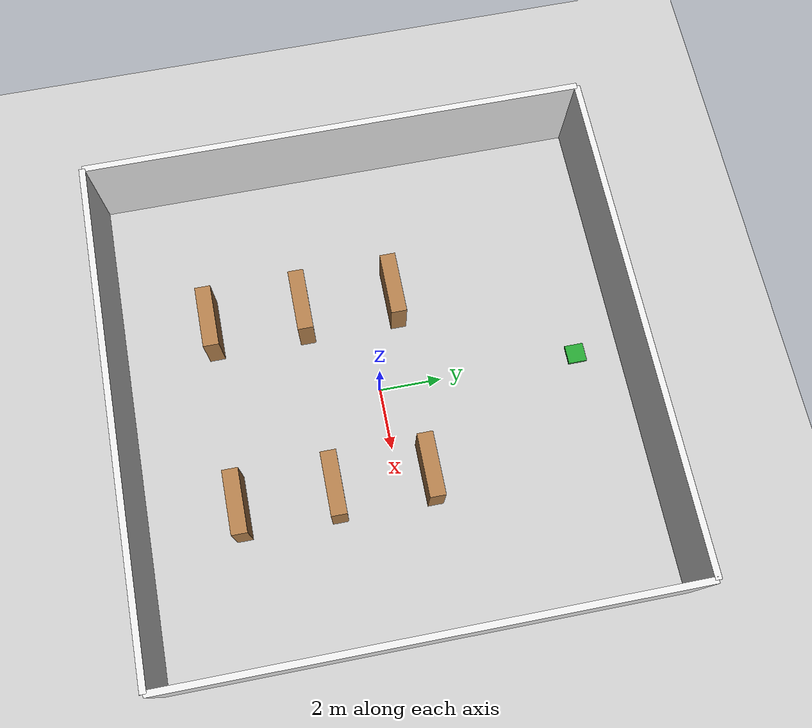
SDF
<?xml version="1.0"?>
<sdf version="1.6">
  <world name="warehouse_world">

    <!-- ═══════════════════════════════════════════════
         PHYSICS
    ═══════════════════════════════════════════════ -->
    <physics type="ode">
      <real_time_update_rate>1000.0</real_time_update_rate>
      <max_step_size>0.001</max_step_size>
      <real_time_factor>1</real_time_factor>
      <ode>
        <solver>
          <type>quick</type>
          <iters>150</iters>
          <precon_iters>0</precon_iters>
          <sor>1.4</sor>
          <use_dynamic_moi_rescaling>1</use_dynamic_moi_rescaling>
        </solver>
        <constraints>
          <cfm>0</cfm>
          <erp>0.2</erp>
          <contact_max_correcting_vel>2000.0</contact_max_correcting_vel>
          <contact_surface_layer>0.01</contact_surface_layer>
        </constraints>
      </ode>
    </physics>

    <!-- ═══════════════════════════════════════════════
         SCENE LIGHTING
    ═══════════════════════════════════════════════ -->
    <scene>
      <sky><clouds><speed>12</speed></clouds></sky>
      <ambient>0.6 0.6 0.6 1</ambient>
      <background>0.5 0.5 0.5 1</background>
      <shadows>true</shadows>
    </scene>

    <!-- Main overhead light -->
    <light name="sun" type="directional">
      <pose>0 0 10 0 0 0</pose>
      <diffuse>0.9 0.9 0.9 1</diffuse>
      <specular>0.3 0.3 0.3 1</specular>
      <direction>-0.5 0.1 -0.9</direction>
      <cast_shadows>true</cast_shadows>
    </light>

    <!-- Warehouse ceiling lights (point lights) -->
    <light name="ceiling_light_1" type="point">
      <pose>0 0 4 0 0 0</pose>
      <diffuse>0.8 0.8 0.8 1</diffuse>
      <specular>0.1 0.1 0.1 1</specular>
      <attenuation>
        <range>6</range>
        <constant>0.5</constant>
        <linear>0.01</linear>
        <quadratic>0.001</quadratic>
      </attenuation>
      <cast_shadows>false</cast_shadows>
    </light>

    <light name="ceiling_light_2" type="point">
      <pose>5 0 4 0 0 0</pose>
      <diffuse>0.8 0.8 0.8 1</diffuse>
      <specular>0.1 0.1 0.1 1</specular>
      <attenuation><range>6</range><constant>0.5</constant><linear>0.01</linear><quadratic>0.001</quadratic></attenuation>
      <cast_shadows>false</cast_shadows>
    </light>

    <light name="ceiling_light_3" type="point">
      <pose>-5 0 4 0 0 0</pose>
      <diffuse>0.8 0.8 0.8 1</diffuse>
      <specular>0.1 0.1 0.1 1</specular>
      <attenuation><range>6</range><constant>0.5</constant><linear>0.01</linear><quadratic>0.001</quadratic></attenuation>
      <cast_shadows>false</cast_shadows>
    </light>

    <!-- ═══════════════════════════════════════════════
         GROUND PLANE
    ═══════════════════════════════════════════════ -->
    <model name="ground_plane">
      <static>true</static>
      <link name="link">
        <collision name="collision">
          <geometry><plane><normal>0 0 1</normal><size>30 30</size></plane></geometry>
          <surface><friction><ode><mu>100</mu><mu2>50</mu2></ode></friction></surface>
        </collision>
        <visual name="visual">
          <cast_shadows>false</cast_shadows>
          <geometry><plane><normal>0 0 1</normal><size>30 30</size></plane></geometry>
          <material>
            <script>
              <uri>file://media/materials/scripts/gazebo.material</uri>
              <name>Gazebo/Grey</name>
            </script>
          </material>
        </visual>
      </link>
    </model>

    <!-- ═══════════════════════════════════════════════
         WAREHOUSE WALLS
    ═══════════════════════════════════════════════ -->
    <!-- North wall -->
    <model name="wall_north">
      <static>true</static>
      <pose>0 8 1.5 0 0 0</pose>
      <link name="link">
        <collision name="collision"><geometry><box><size>16 0.2 3.0</size></box></geometry></collision>
        <visual name="visual">
          <geometry><box><size>16 0.2 3.0</size></box></geometry>
          <material><script><name>Gazebo/White</name></script></material>
        </visual>
      </link>
    </model>

    <!-- South wall -->
    <model name="wall_south">
      <static>true</static>
      <pose>0 -8 1.5 0 0 0</pose>
      <link name="link">
        <collision name="collision"><geometry><box><size>16 0.2 3.0</size></box></geometry></collision>
        <visual name="visual">
          <geometry><box><size>16 0.2 3.0</size></box></geometry>
          <material><script><name>Gazebo/White</name></script></material>
        </visual>
      </link>
    </model>

    <!-- East wall -->
    <model name="wall_east">
      <static>true</static>
      <pose>8 0 1.5 0 0 0</pose>
      <link name="link">
        <collision name="collision"><geometry><box><size>0.2 16 3.0</size></box></geometry></collision>
        <visual name="visual">
          <geometry><box><size>0.2 16 3.0</size></box></geometry>
          <material><script><name>Gazebo/White</name></script></material>
        </visual>
      </link>
    </model>

    <!-- West wall -->
    <model name="wall_west">
      <static>true</static>
      <pose>-8 0 1.5 0 0 0</pose>
      <link name="link">
        <collision name="collision"><geometry><box><size>0.2 16 3.0</size></box></geometry></collision>
        <visual name="visual">
          <geometry><box><size>0.2 16 3.0</size></box></geometry>
          <material><script><name>Gazebo/White</name></script></material>
        </visual>
      </link>
    </model>

    <!-- Shelf Row A (x=3) -->
    <model name="shelf_A1">
      <static>true</static>
      <pose>3 -5 0.75 0 0 0</pose>
      <link name="link">
        <collision name="col"><geometry><box><size>2.0 0.5 1.5</size></box></geometry></collision>
        <visual name="vis">
          <geometry><box><size>2.0 0.5 1.5</size></box></geometry>
          <material><script><name>Gazebo/Wood</name></script></material>
        </visual>
      </link>
    </model>

    <model name="shelf_A2">
      <static>true</static>
      <pose>3 -2 0.75 0 0 0</pose>
      <link name="link">
        <collision name="col"><geometry><box><size>2.0 0.5 1.5</size></box></geometry></collision>
        <visual name="vis">
          <geometry><box><size>2.0 0.5 1.5</size></box></geometry>
          <material><script><name>Gazebo/Wood</name></script></material>
        </visual>
      </link>
    </model>

    <model name="shelf_A3">
      <static>true</static>
      <pose>3 1 0.75 0 0 0</pose>
      <link name="link">
        <collision name="col"><geometry><box><size>2.0 0.5 1.5</size></box></geometry></collision>
        <visual name="vis">
          <geometry><box><size>2.0 0.5 1.5</size></box></geometry>
          <material><script><name>Gazebo/Wood</name></script></material>
        </visual>
      </link>
    </model>

    <!-- Shelf Row B (x=-3) -->
    <model name="shelf_B1">
      <static>true</static>
      <pose>-3 -5 0.75 0 0 0</pose>
      <link name="link">
        <collision name="col"><geometry><box><size>2.0 0.5 1.5</size></box></geometry></collision>
        <visual name="vis">
          <geometry><box><size>2.0 0.5 1.5</size></box></geometry>
          <material><script><name>Gazebo/Wood</name></script></material>
        </visual>
      </link>
    </model>

    <model name="shelf_B2">
      <static>true</static>
      <pose>-3 -2 0.75 0 0 0</pose>
      <link name="link">
        <collision name="col"><geometry><box><size>2.0 0.5 1.5</size></box></geometry></collision>
        <visual name="vis">
          <geometry><box><size>2.0 0.5 1.5</size></box></geometry>
          <material><script><name>Gazebo/Wood</name></script></material>
        </visual>
      </link>
    </model>

    <model name="shelf_B3">
      <static>true</static>
      <pose>-3 1 0.75 0 0 0</pose>
      <link name="link">
        <collision name="col"><geometry><box><size>2.0 0.5 1.5</size></box></geometry></collision>
        <visual name="vis">
          <geometry><box><size>2.0 0.5 1.5</size></box></geometry>
          <material><script><name>Gazebo/Wood</name></script></material>
        </visual>
      </link>
    </model>

    <!-- Marker 0 – Task A (shelf A1 face) -->
    <model name="aruco_marker_0">
      <static>true</static>
      <pose>3.26 -5 0.8 0 0 3.14159</pose>
      <link name="link">
        <collision name="col"><geometry><box><size>0.01 0.2 0.2</size></box></geometry></collision>
        <visual name="vis">
          <geometry><box><size>0.01 0.2 0.2</size></box></geometry>
          <material>
            <script>
              <uri>model://warehouse_robot/materials/aruco_0.material</uri>
              <name>ArUco/Marker0</name>
            </script>
          </material>
        </visual>
      </link>
    </model>

    <!-- Marker 1 – Task B (shelf B1 face) -->
    <model name="aruco_marker_1">
      <static>true</static>
      <pose>-2.74 -5 0.8 0 0 0</pose>
      <link name="link">
        <collision name="col"><geometry><box><size>0.01 0.2 0.2</size></box></geometry></collision>
        <visual name="vis">
          <geometry><box><size>0.01 0.2 0.2</size></box></geometry>
          <material>
            <script>
              <uri>model://warehouse_robot/materials/aruco_1.material</uri>
              <name>ArUco/Marker1</name>
            </script>
          </material>
        </visual>
      </link>
    </model>

    <!-- Marker 2 – Task C (shelf A2 face) -->
    <model name="aruco_marker_2">
      <static>true</static>
      <pose>3.26 -2 0.8 0 0 3.14159</pose>
      <link name="link">
        <collision name="col"><geometry><box><size>0.01 0.2 0.2</size></box></geometry></collision>
        <visual name="vis">
          <geometry><box><size>0.01 0.2 0.2</size></box></geometry>
          <material>
            <script>
              <uri>model://warehouse_robot/materials/aruco_2.material</uri>
              <name>ArUco/Marker2</name>
            </script>
          </material>
        </visual>
      </link>
    </model>

    <!-- Marker 3 – Task D (shelf B2 face, dynamic demo) -->
    <model name="aruco_marker_3">
      <static>true</static>
      <pose>-2.74 -2 0.8 0 0 0</pose>
      <link name="link">
        <collision name="col"><geometry><box><size>0.01 0.2 0.2</size></box></geometry></collision>
        <visual name="vis">
          <geometry><box><size>0.01 0.2 0.2</size></box></geometry>
          <material>
            <script>
              <uri>model://warehouse_robot/materials/aruco_3.material</uri>
              <name>ArUco/Marker3</name>
            </script>
          </material>
        </visual>
      </link>
    </model>

    <!-- ═══════════════════════════════════════════════
         CHARGING STATION / HOME BASE
    ═══════════════════════════════════════════════ -->
    <model name="charging_station">
      <static>true</static>
      <pose>0 6.5 0.05 0 0 0</pose>
      <link name="link">
        <collision name="col"><geometry><box><size>0.6 0.6 0.1</size></box></geometry></collision>
        <visual name="vis">
          <geometry><box><size>0.6 0.6 0.1</size></box></geometry>
          <material><script><name>Gazebo/Green</name></script></material>
        </visual>
      </link>
    </model>

    <!-- ═══════════════════════════════════════════════
         ROBOT SPAWN POSITION
         (handled via launch file, shown here for ref)
    ═══════════════════════════════════════════════ -->

  </world>
</sdf>
